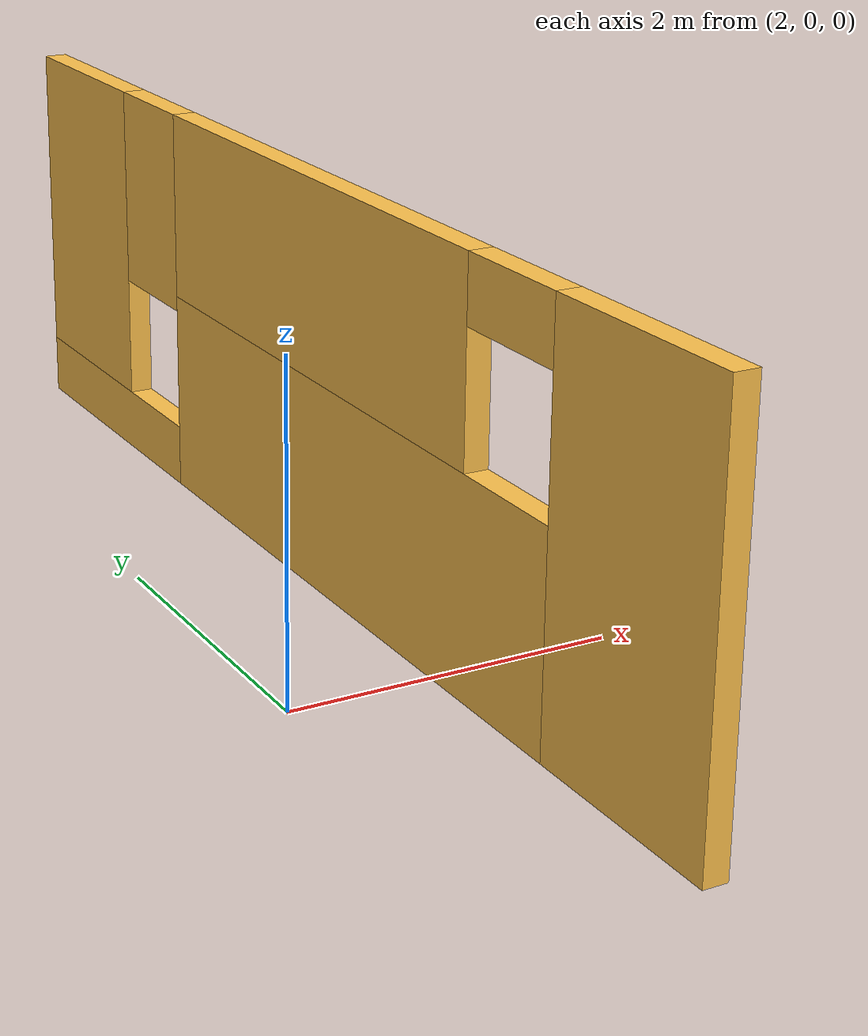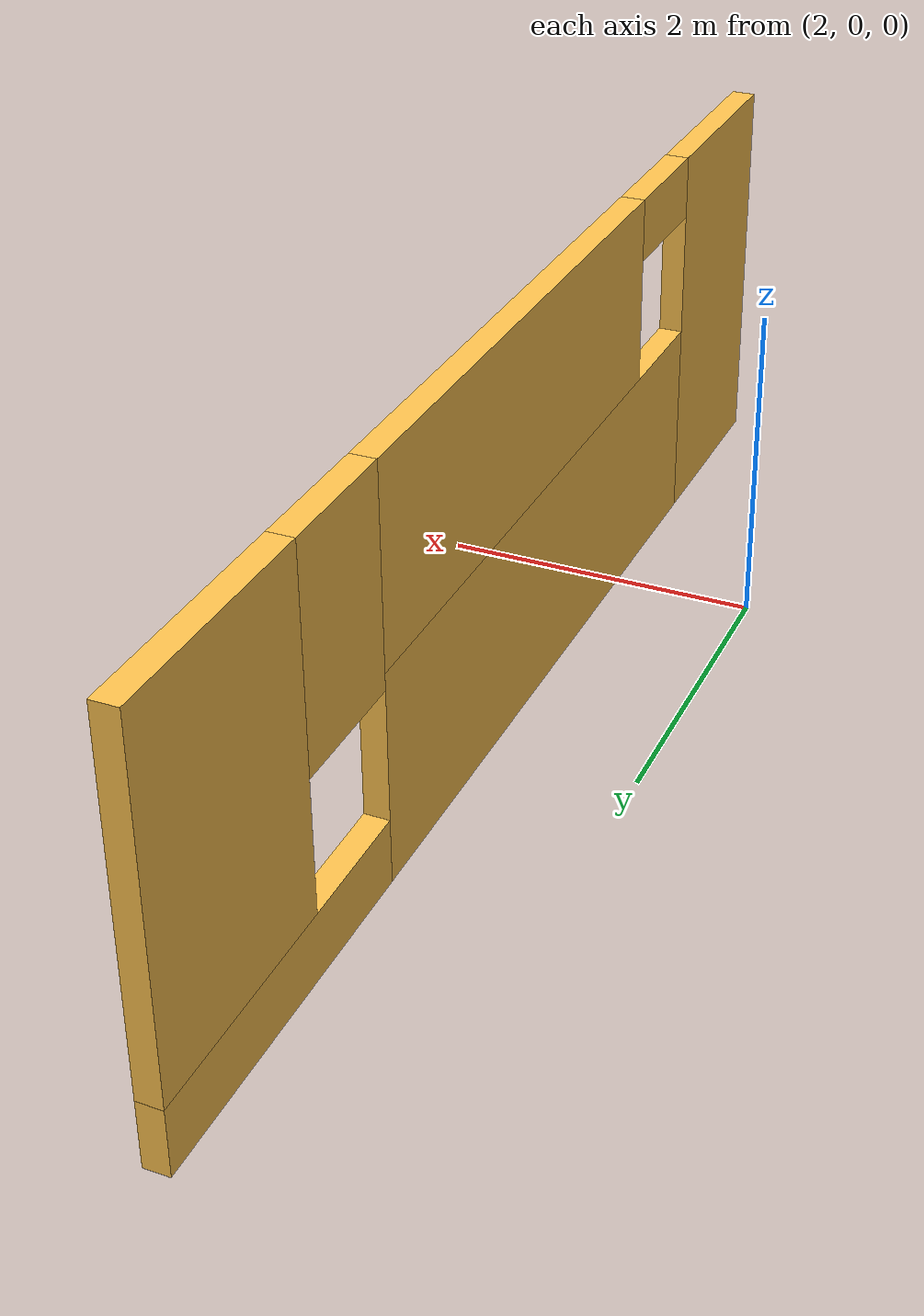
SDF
<?xml version='1.0'?>
<sdf version='1.6'>
  <model name='2Windows'>
    <pose frame=''>2.94993 1.53151 0 0 -0 0</pose>
    <link name='Wall_0'>
      <pose frame=''>0 0 0 0 -0 1.5708</pose>
      <visual name='Wall_0_Visual_0'>
        <pose frame=''>-3.31603 0 1.25 0 -0 0</pose>
        <geometry>
          <box>
            <size>1.36793 0.15 2.5</size>
          </box>
        </geometry>
        <material>
          <script>
            <uri>file://media/materials/scripts/gazebo.material</uri>
            <name>Gazebo/Grey</name>
          </script>
          <ambient>1 0.764706 0.305882 1</ambient>
        </material>
      </visual>
      <collision name='Wall_0_Collision_0'>
        <geometry>
          <box>
            <size>1.36793 0.15 2.5</size>
          </box>
        </geometry>
        <pose frame=''>-3.31603 0 1.25 0 -0 0</pose>
      </collision>
      <visual name='Wall_0_Visual_1'>
        <pose frame=''>-0.423092 0 0.65 0 -0 0</pose>
        <geometry>
          <box>
            <size>4.41795 0.15 1.3</size>
          </box>
        </geometry>
        <material>
          <script>
            <uri>file://media/materials/scripts/gazebo.material</uri>
            <name>Gazebo/Grey</name>
          </script>
          <ambient>1 0.764706 0.305882 1</ambient>
        </material>
      </visual>
      <collision name='Wall_0_Collision_1'>
        <geometry>
          <box>
            <size>4.41795 0.15 1.3</size>
          </box>
        </geometry>
        <pose frame=''>-0.423092 0 0.65 0 -0 0</pose>
      </collision>
      <visual name='Wall_0_Visual_2'>
        <pose frame=''>2.89294 0 0.2 0 -0 0</pose>
        <geometry>
          <box>
            <size>2.21412 0.15 0.4</size>
          </box>
        </geometry>
        <material>
          <script>
            <uri>file://media/materials/scripts/gazebo.material</uri>
            <name>Gazebo/Grey</name>
          </script>
          <ambient>1 0.764706 0.305882 1</ambient>
        </material>
      </visual>
      <collision name='Wall_0_Collision_2'>
        <geometry>
          <box>
            <size>2.21412 0.15 0.4</size>
          </box>
        </geometry>
        <pose frame=''>2.89294 0 0.2 0 -0 0</pose>
      </collision>
      <visual name='Wall_0_Visual_3'>
        <pose frame=''>3.29294 0 1.45 0 -0 0</pose>
        <geometry>
          <box>
            <size>1.41412 0.15 2.1</size>
          </box>
        </geometry>
        <material>
          <script>
            <uri>file://media/materials/scripts/gazebo.material</uri>
            <name>Gazebo/Grey</name>
          </script>
          <ambient>1 0.764706 0.305882 1</ambient>
        </material>
      </visual>
      <collision name='Wall_0_Collision_3'>
        <geometry>
          <box>
            <size>1.41412 0.15 2.1</size>
          </box>
        </geometry>
        <pose frame=''>3.29294 0 1.45 0 -0 0</pose>
      </collision>
      <visual name='Wall_0_Visual_4'>
        <pose frame=''>2.18588 0 1.85 0 -0 0</pose>
        <geometry>
          <box>
            <size>0.8 0.15 1.3</size>
          </box>
        </geometry>
        <material>
          <script>
            <uri>file://media/materials/scripts/gazebo.material</uri>
            <name>Gazebo/Grey</name>
          </script>
          <ambient>1 0.764706 0.305882 1</ambient>
        </material>
      </visual>
      <collision name='Wall_0_Collision_4'>
        <geometry>
          <box>
            <size>0.8 0.15 1.3</size>
          </box>
        </geometry>
        <pose frame=''>2.18588 0 1.85 0 -0 0</pose>
      </collision>
      <visual name='Wall_0_Visual_5'>
        <pose frame=''>-0.023092 0 1.9 0 -0 0</pose>
        <geometry>
          <box>
            <size>3.61795 0.15 1.2</size>
          </box>
        </geometry>
        <material>
          <script>
            <uri>file://media/materials/scripts/gazebo.material</uri>
            <name>Gazebo/Grey</name>
          </script>
          <ambient>1 0.764706 0.305882 1</ambient>
        </material>
      </visual>
      <collision name='Wall_0_Collision_5'>
        <geometry>
          <box>
            <size>3.61795 0.15 1.2</size>
          </box>
        </geometry>
        <pose frame=''>-0.023092 0 1.9 0 -0 0</pose>
      </collision>
      <visual name='Wall_0_Visual_6'>
        <pose frame=''>-2.23206 0 2.3 0 -0 0</pose>
        <geometry>
          <box>
            <size>0.8 0.15 0.4</size>
          </box>
        </geometry>
        <material>
          <script>
            <uri>file://media/materials/scripts/gazebo.material</uri>
            <name>Gazebo/Grey</name>
          </script>
          <ambient>1 0.764706 0.305882 1</ambient>
        </material>
      </visual>
      <collision name='Wall_0_Collision_6'>
        <geometry>
          <box>
            <size>0.8 0.15 0.4</size>
          </box>
        </geometry>
        <pose frame=''>-2.23206 0 2.3 0 -0 0</pose>
      </collision>
    </link>
    <static>1</static>
  </model>
</sdf>
